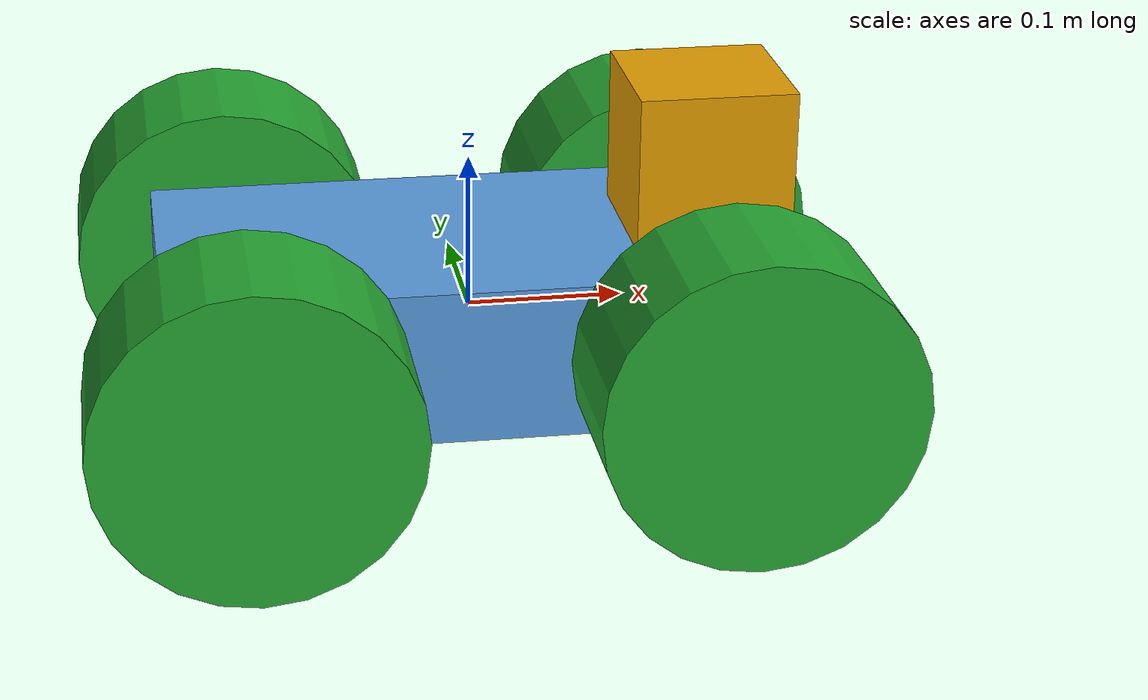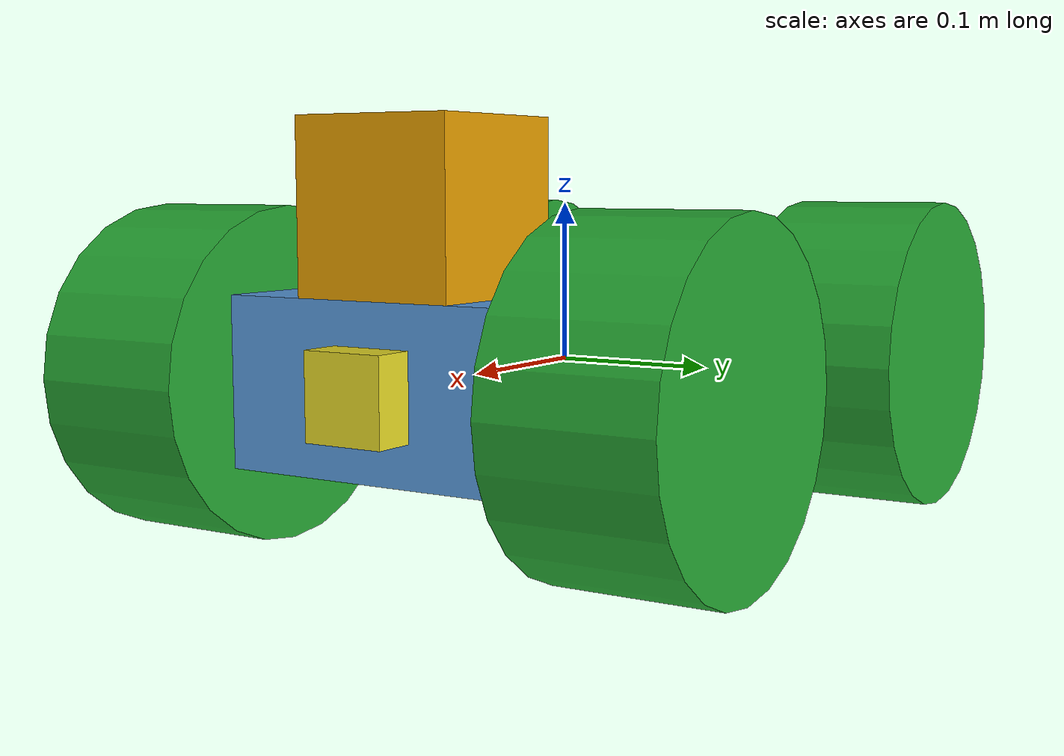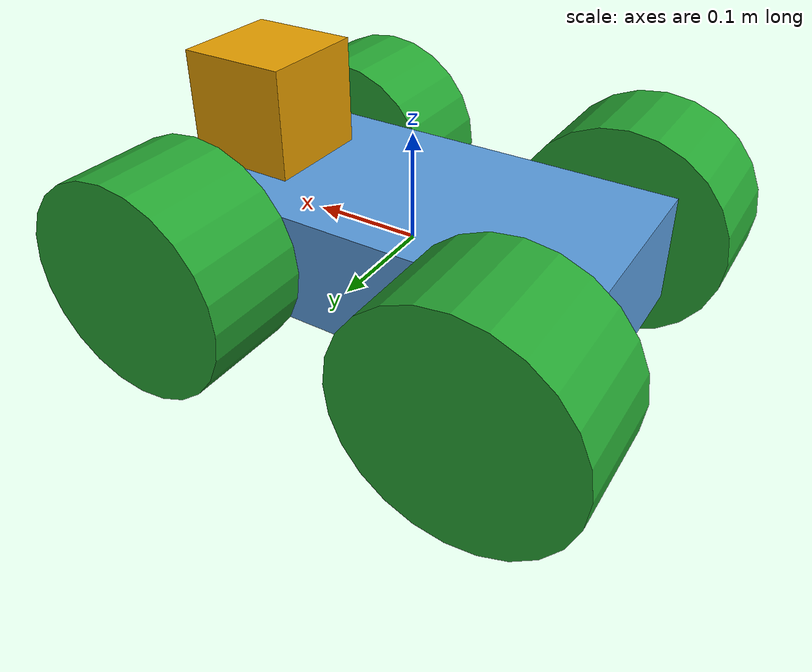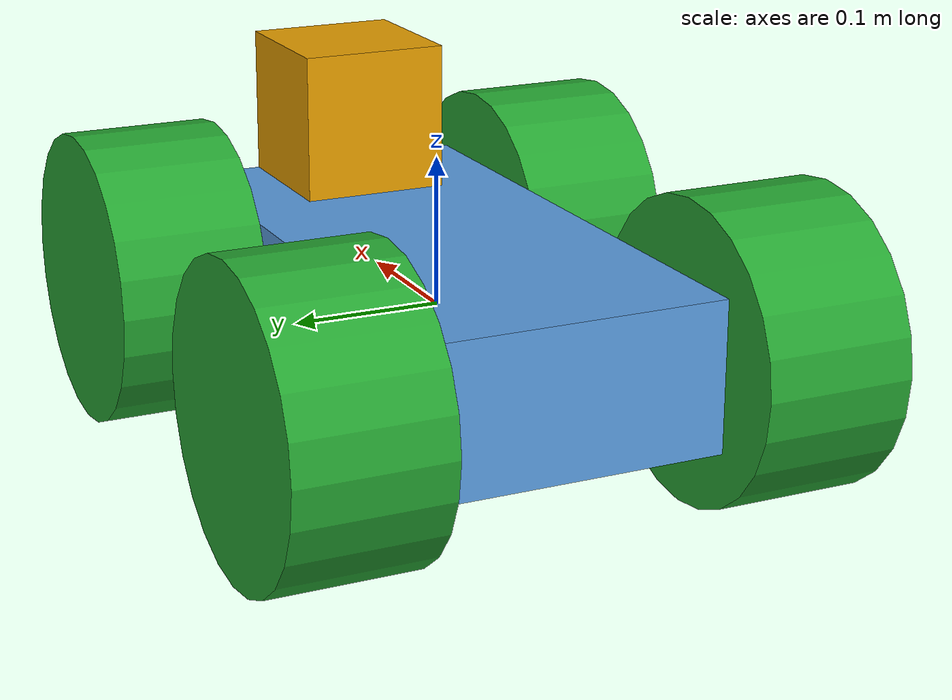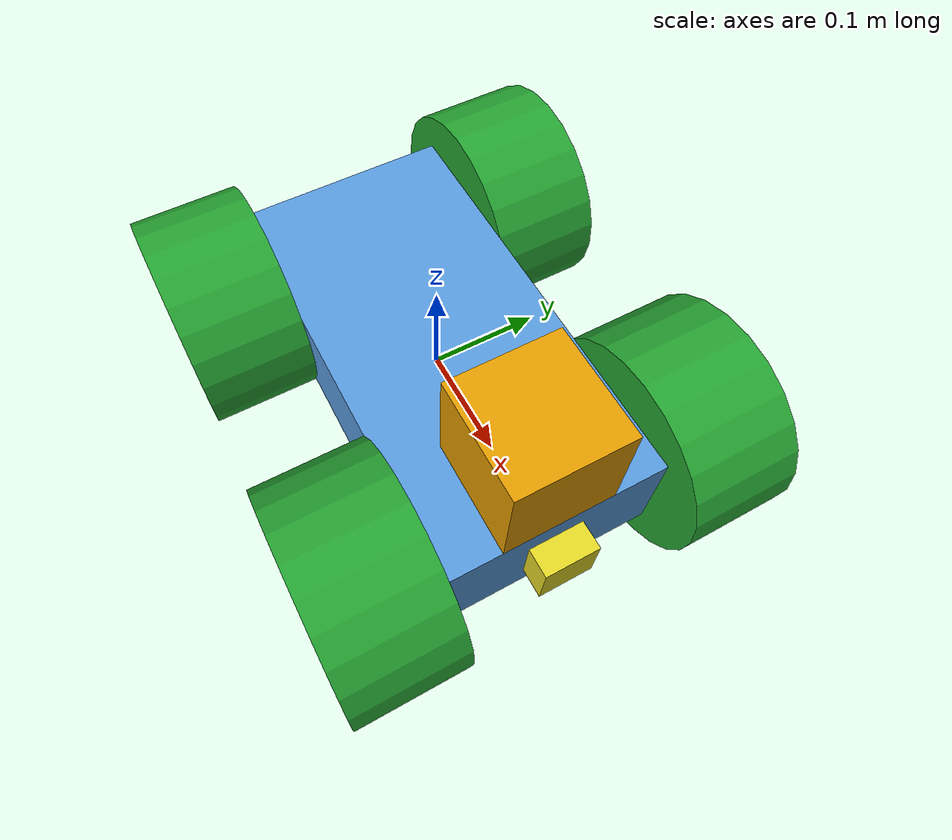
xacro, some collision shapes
<?xml version='1.0'?>

<robot name="my_robot" xmlns:xacro="http://www.ros.org/wiki/xacro">
  <xacro:include filename="$(find my_robot)/urdf/my_robot.gazebo"/>
  <link name="robot_footprint"></link>

  <joint name="robot_footprint_joint" type="fixed">
    <origin xyz="0 0 0" rpy="0 0 0" />
    <parent link="robot_footprint"/>
    <child link="chassis" />
  </joint>

  <link name='chassis'>
    <pose>0 0 0.1 0 0 0</pose>

    <inertial>
      <mass value="15.0"/>
      <origin xyz="0.0 0 0" rpy=" 0 0 0"/>
      <inertia
          ixx="0.1" ixy="0" ixz="0"
          iyy="0.1" iyz="0"
          izz="0.1"
      />
    </inertial>

    <collision name='collision'>
      <origin xyz="0 0 0" rpy=" 0 0 0"/>
      <geometry>
        <box size=".4 .2 .1"/>
      </geometry>
    </collision>

    <visual name='chassis_visual'>
      <origin xyz="0 0 0" rpy=" 0 0 0"/>
      <geometry>
        <box size=".4 .2 .1"/>
      </geometry>
      <material name="light blue">
  <color rgba="0.35 0.61 0.87 1.0"/>
      </material>
    </visual>
  </link>

  <link name="left_rearwheel">
    <origin xyz="0 0 0" rpy="0 1.5707 1.5707"/>
    <geometry>
      <cylinder radius="0.1" length="0.1"/>
    </geometry>
    <inertial>
      <mass value="5.0"/>
      <origin xyz="0.0 0 0" rpy=" 0 0 0"/>
      <inertia
          ixx="0.1" ixy="0" ixz="0"
          iyy="0.1" iyz="0"
          izz="0.1"
      />
    </inertial>

  <collision name="collision">
    <origin xyz="0 0 0" rpy="0 1.5707 1.5707"/>
    <geometry>
      <cylinder radius="0.1" length="0.1"/>
    </geometry>
  </collision>

  <visual name="left_rearwheel_visual">
    <origin xyz="0 0 0" rpy="0 1.5707 1.5707"/>
    <geometry>
      <cylinder radius="0.1" length="0.1"/>
    </geometry>
  </visual>
  </link>

  <link name="left_frontwheel">
    <origin xyz="0 0 0" rpy="0 1.5707 1.5707"/>
    <geometry>
      <cylinder radius="0.1" length="0.1"/>
    </geometry>
    <inertial>
      <mass value="5.0"/>
      <origin xyz="0.0 0 0" rpy=" 0 0 0"/>
      <inertia
          ixx="0.1" ixy="0" ixz="0"
          iyy="0.1" iyz="0"
          izz="0.1"
      />
    </inertial>

  <collision name="collision">
    <origin xyz="0 0 0" rpy="0 1.5707 1.5707"/>
    <geometry>
      <cylinder radius="0.1" length="0.1"/>
    </geometry>
  </collision>

  <visual name="left_frontwheel_visual">
    <origin xyz="0 0 0" rpy="0 1.5707 1.5707"/>
    <geometry>
      <cylinder radius="0.1" length="0.1"/>
    </geometry>
  </visual>
  </link>

  <link name="right_rearwheel">
      <inertial>
            <mass value="5.0"/>
            <origin xyz="0.0 0 0" rpy=" 0 0 0"/>
            <inertia
               ixx="0.1" ixy="0" ixz="0"
               iyy="0.1" iyz="0"
               izz="0.1"
            />
        </inertial>

    <collision name="collision">
         <origin xyz="0 0 0" rpy="0 1.5707 1.5707"/>
         <geometry>
            <cylinder radius="0.1" length="0.1"/>
         </geometry>
      </collision>

      <visual name="right_rearwheel_visual">
         <origin xyz="0 0 0" rpy="0 1.5707 1.5707"/>
         <geometry>
           <cylinder radius="0.1" length="0.1"/>
         </geometry>
      </visual>
  </link>

  <link name="right_frontwheel">
      <inertial>
            <mass value="5.0"/>
            <origin xyz="0.0 0 0" rpy=" 0 0 0"/>
            <inertia
               ixx="0.1" ixy="0" ixz="0"
               iyy="0.1" iyz="0"
               izz="0.1"
            />
        </inertial>

    <collision name="collision">
         <origin xyz="0 0 0" rpy="0 1.5707 1.5707"/>
         <geometry>
            <cylinder radius="0.1" length="0.1"/>
         </geometry>
      </collision>

      <visual name="right_frontwheel_visual">
         <origin xyz="0 0 0" rpy="0 1.5707 1.5707"/>
         <geometry>
           <cylinder radius="0.1" length="0.1"/>
         </geometry>
      </visual>
  </link>

  <joint name="left_rearwheel_hinge" type="continuous">
    <origin xyz="-0.15 0.15 0" rpy="0 0 0"/>
    <parent link="chassis"/>
    <child link="left_rearwheel"/>
    <axis xyz="0 1 0" rpy="0 0 0"/>
    <limit effort="10000" velocity="1000"/>
    <dynamics damping="1.0" friction="1.0"/>
  </joint>

  <joint name="right_rearwheel_hinge" type="continuous">
    <origin xyz="-0.15 -0.15 0" rpy="0 0 0"/>
    <parent link="chassis"/>
    <child link="right_rearwheel"/>
    <axis xyz="0 1 0" rpy="0 0 0"/>
    <limit effort="10000" velocity="1000"/>
    <dynamics damping="1.0" friction="1.0"/>
  </joint>

  <joint name="left_frontwheel_hinge" type="continuous">
    <origin xyz="0.15 0.15 0" rpy="0 0 0"/>
    <parent link="chassis"/>
    <child link="left_frontwheel"/>
    <axis xyz="0 1 0" rpy="0 0 0"/>
    <limit effort="10000" velocity="1000"/>
    <dynamics damping="1.0" friction="1.0"/>
  </joint>

  <joint name="right_frontwheel_hinge" type="continuous">
    <origin xyz="0.15 -0.15 0" rpy="0 0 0"/>
    <parent link="chassis"/>
    <child link="right_frontwheel"/>
    <axis xyz="0 1 0" rpy="0 0 0"/>
    <limit effort="10000" velocity="1000"/>
    <dynamics damping="1.0" friction="1.0"/>
  </joint>

  <link name="camera_link">
    <inertial>
    <mass value="0.1"/>
    <origin xyz="0 0 0" rpy="0 0 0"/>
    <inertia
      ixx="1e-6" ixy="0" ixz="0"
      iyy="1e-6" iyz="0"
      izz="1e-6"
    />
    <box_inertia m="0.1" x="0.05" y="0.05" z="0.05"/>
    </inertial>

    <collision name="collision">
      <origin xyz="0 0 0" rpy="0 0 0"/>
      <geometry>
        <box size="0.05 0.05 0.05"/>
      </geometry>
    </collision>

    <visual name="camera visual">
      <origin xyz="0 0 0" rpy="0 0 0"/>
      <geometry>
        <box size="0.05 0.05 0.05"/>
      </geometry>
    </visual>
  </link>

  <joint name="camera_joint" type="fixed">
    <origin xyz="0.2 0 0" rpy="0 0 0"/>
    <parent link="chassis"/>
    <child link="camera_link"/>
    <axis xyz="0 1 0" rpy="0 0 0"/>
  </joint>

  <joint name="camera_optical_joint" type="fixed">
    <origin xyz="0 0 0" rpy="-1.5707 0 -1.5707"/>
    <parent link="camera_link"/>
    <child link="camera_link_optical"/>
  </joint>

  <link name="camera_link_optical">
  </link>

  <link name="hokuyo">
    <interial>
      <mass value="1e-5"/>
      <origin xyz="0 0 0" rpy="0 0 0"/>
      <inertia
        ixx="1e-6" ixy="0" ixz="0"
        iyy="1e-6" iyz="0"
        izz="1e-6"
      />
    </interial>

    <collision name="collision">
      <origin xyz="0 0 0" rpy="0 0 0"/>
      <geometry>
        <box size="0.1 0.1 0.1"/>
      </geometry>
    </collision>

    <visual>
      <origin xyz="0 0 0" rpy="0 0 0"/>
      <geometry>
        <mesh filename="package://my_robot/meshes/hokuyo.dae"/>
      </geometry>
    </visual>
  </link>

  <joint name="hokuyo_joint" type="fixed">
    <origin xyz="0.15 0 0.1" rpy="0 0 0"/>
    <parent link="chassis"/>
    <child link="hokuyo"/>
    <axis xyz="0 1 0" rpy="0 0 0"/>
  </joint>

</robot>
